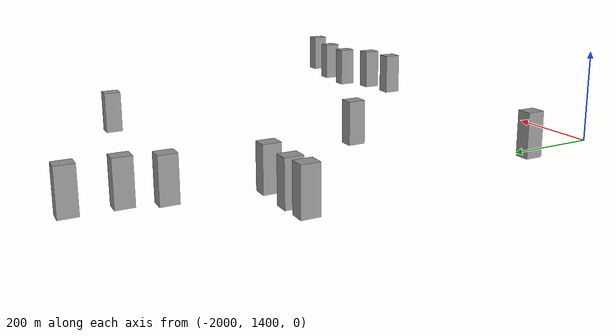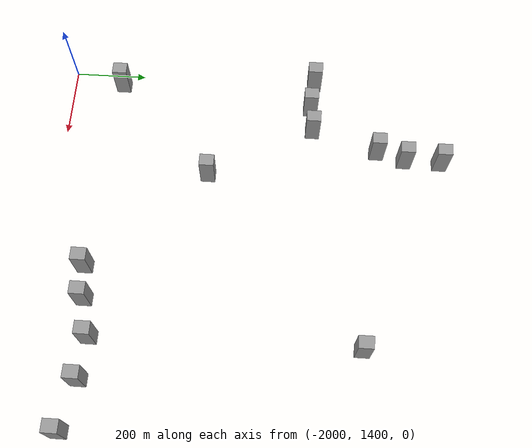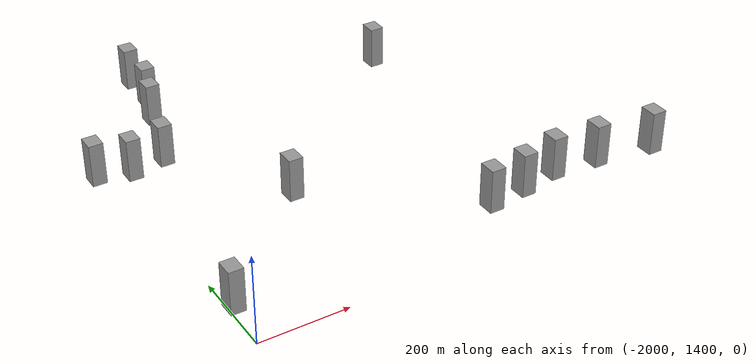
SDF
<sdf version="1.7">
 <world name="default">
  <model name="huge_building_7">
   <link name="link">
    <inertial>
     <mass>137299</mass>
     <inertia>
      <ixx>1.37911e+08</ixx>
      <ixy>0</ixy>
      <ixz>0</ixz>
      <iyy>1.32035e+08</iyy>
      <iyz>0</iyz>
      <izz>3.13216e+07</izz>
     </inertia>
    </inertial>
    <visual name="visual">
     <geometry><box><size>33.3468 40.3177 102.117</size></box></geometry>
     <material>
      <script><name>Gazebo/Grey</name><uri>file://media/materials/scripts/gazebo.material</uri></script>
      <shader type="pixel"/>
     </material>
    </visual>
    <collision name="collision">
     <geometry><box><size>33.3468 40.3177 102.117</size></box></geometry>
     <surface>
      <friction>
       <ode><mu>1</mu><mu2>1</mu2><fdir1>0 0 0</fdir1><slip1>0</slip1><slip2>0</slip2></ode>
       <torsional>
        <coefficient>1</coefficient>
        <patch_radius>0</patch_radius>
        <surface_radius>0</surface_radius>
        <use_patch_radius>1</use_patch_radius>
        <ode><slip>0</slip></ode>
       </torsional>
      </friction>
      <bounce><restitution_coefficient>0</restitution_coefficient><threshold>1e+06</threshold></bounce>
      <contact>
       <collide_without_contact>0</collide_without_contact>
       <collide_without_contact_bitmask>1</collide_without_contact_bitmask>
       <collide_bitmask>1</collide_bitmask>
       <ode>
        <soft_cfm>0</soft_cfm>
        <soft_erp>0.2</soft_erp>
        <kp>1e+13</kp>
        <kd>1</kd>
        <max_vel>0.01</max_vel>
        <min_depth>0</min_depth>
       </ode>
       <bullet>
        <split_impulse>1</split_impulse>
        <split_impulse_penetration_threshold>-0.01</split_impulse_penetration_threshold>
        <soft_cfm>0</soft_cfm>
        <soft_erp>0.2</soft_erp>
        <kp>1e+13</kp>
        <kd>1</kd>
       </bullet>
      </contact>
     </surface>
    </collision>
   </link>
   <static>0</static>
   <pose>-961.829 1519.98 59 0 -0 0</pose>
  </model>
  <model name="huge_building_9">
   <link name="link">
    <inertial>
     <mass>137299</mass>
     <inertia>
      <ixx>1.37911e+08</ixx>
      <ixy>0</ixy>
      <ixz>0</ixz>
      <iyy>1.32035e+08</iyy>
      <iyz>0</iyz>
      <izz>3.13216e+07</izz>
     </inertia>
    </inertial>
    <visual name="visual">
     <geometry><box><size>33.3468 40.3177 102.117</size></box></geometry>
     <material>
      <script><name>Gazebo/Grey</name><uri>file://media/materials/scripts/gazebo.material</uri></script>
      <shader type="pixel"/>
     </material>
    </visual>
    <collision name="collision">
     <geometry><box><size>33.3468 40.3177 102.117</size></box></geometry>
     <surface>
      <friction>
       <ode><mu>1</mu><mu2>1</mu2><fdir1>0 0 0</fdir1><slip1>0</slip1><slip2>0</slip2></ode>
       <torsional>
        <coefficient>1</coefficient>
        <patch_radius>0</patch_radius>
        <surface_radius>0</surface_radius>
        <use_patch_radius>1</use_patch_radius>
        <ode><slip>0</slip></ode>
       </torsional>
      </friction>
      <bounce><restitution_coefficient>0</restitution_coefficient><threshold>1e+06</threshold></bounce>
      <contact>
       <collide_without_contact>0</collide_without_contact>
       <collide_without_contact_bitmask>1</collide_without_contact_bitmask>
       <collide_bitmask>1</collide_bitmask>
       <ode>
        <soft_cfm>0</soft_cfm>
        <soft_erp>0.2</soft_erp>
        <kp>1e+13</kp>
        <kd>1</kd>
        <max_vel>0.01</max_vel>
        <min_depth>0</min_depth>
       </ode>
       <bullet>
        <split_impulse>1</split_impulse>
        <split_impulse_penetration_threshold>-0.01</split_impulse_penetration_threshold>
        <soft_cfm>0</soft_cfm>
        <soft_erp>0.2</soft_erp>
        <kp>1e+13</kp>
        <kd>1</kd>
       </bullet>
      </contact>
     </surface>
    </collision>
   </link>
   <static>0</static>
   <pose>-1864.15 2105.7 9 0 -0 0</pose>
  </model>
  <model name="huge_building_60">
   <link name="link">
    <inertial>
     <mass>137299</mass>
     <inertia>
      <ixx>1.37911e+08</ixx>
      <ixy>0</ixy>
      <ixz>0</ixz>
      <iyy>1.32035e+08</iyy>
      <iyz>0</iyz>
      <izz>3.13216e+07</izz>
     </inertia>
    </inertial>
    <visual name="visual">
     <geometry><box><size>33.3468 40.3177 102.117</size></box></geometry>
     <material>
      <script><name>Gazebo/Grey</name><uri>file://media/materials/scripts/gazebo.material</uri></script>
      <shader type="pixel"/>
     </material>
    </visual>
    <collision name="collision">
     <geometry><box><size>33.3468 40.3177 102.117</size></box></geometry>
     <surface>
      <friction>
       <ode><mu>1</mu><mu2>1</mu2><fdir1>0 0 0</fdir1><slip1>0</slip1><slip2>0</slip2></ode>
       <torsional>
        <coefficient>1</coefficient>
        <patch_radius>0</patch_radius>
        <surface_radius>0</surface_radius>
        <use_patch_radius>1</use_patch_radius>
        <ode><slip>0</slip></ode>
       </torsional>
      </friction>
      <bounce><restitution_coefficient>0</restitution_coefficient><threshold>1e+06</threshold></bounce>
      <contact>
       <collide_without_contact>0</collide_without_contact>
       <collide_without_contact_bitmask>1</collide_without_contact_bitmask>
       <collide_bitmask>1</collide_bitmask>
       <ode>
        <soft_cfm>0</soft_cfm>
        <soft_erp>0.2</soft_erp>
        <kp>1e+13</kp>
        <kd>1</kd>
        <max_vel>0.01</max_vel>
        <min_depth>0</min_depth>
       </ode>
       <bullet>
        <split_impulse>1</split_impulse>
        <split_impulse_penetration_threshold>-0.01</split_impulse_penetration_threshold>
        <soft_cfm>0</soft_cfm>
        <soft_erp>0.2</soft_erp>
        <kp>1e+13</kp>
        <kd>1</kd>
       </bullet>
      </contact>
     </surface>
    </collision>
   </link>
   <static>0</static>
   <pose>-1091.26 1546.53 54 0 -0 0</pose>
  </model>
  <model name="huge_building_61">
   <link name="link">
    <inertial>
     <mass>137299</mass>
     <inertia>
      <ixx>1.37911e+08</ixx>
      <ixy>0</ixy>
      <ixz>0</ixz>
      <iyy>1.32035e+08</iyy>
      <iyz>0</iyz>
      <izz>3.13216e+07</izz>
     </inertia>
    </inertial>
    <visual name="visual">
     <geometry><box><size>33.3468 40.3177 102.117</size></box></geometry>
     <material>
      <script><name>Gazebo/Grey</name><uri>file://media/materials/scripts/gazebo.material</uri></script>
      <shader type="pixel"/>
     </material>
    </visual>
    <collision name="collision">
     <geometry><box><size>33.3468 40.3177 102.117</size></box></geometry>
     <surface>
      <friction>
       <ode><mu>1</mu><mu2>1</mu2><fdir1>0 0 0</fdir1><slip1>0</slip1><slip2>0</slip2></ode>
       <torsional>
        <coefficient>1</coefficient>
        <patch_radius>0</patch_radius>
        <surface_radius>0</surface_radius>
        <use_patch_radius>1</use_patch_radius>
        <ode><slip>0</slip></ode>
       </torsional>
      </friction>
      <bounce><restitution_coefficient>0</restitution_coefficient><threshold>1e+06</threshold></bounce>
      <contact>
       <collide_without_contact>0</collide_without_contact>
       <collide_without_contact_bitmask>1</collide_without_contact_bitmask>
       <collide_bitmask>1</collide_bitmask>
       <ode>
        <soft_cfm>0</soft_cfm>
        <soft_erp>0.2</soft_erp>
        <kp>1e+13</kp>
        <kd>1</kd>
        <max_vel>0.01</max_vel>
        <min_depth>0</min_depth>
       </ode>
       <bullet>
        <split_impulse>1</split_impulse>
        <split_impulse_penetration_threshold>-0.01</split_impulse_penetration_threshold>
        <soft_cfm>0</soft_cfm>
        <soft_erp>0.2</soft_erp>
        <kp>1e+13</kp>
        <kd>1</kd>
       </bullet>
      </contact>
     </surface>
    </collision>
   </link>
   <static>0</static>
   <pose>-1200.47 1555.99 54 0 -0 0</pose>
  </model>
  <model name="huge_building_62">
   <link name="link">
    <inertial>
     <mass>137299</mass>
     <inertia>
      <ixx>1.37911e+08</ixx>
      <ixy>0</ixy>
      <ixz>0</ixz>
      <iyy>1.32035e+08</iyy>
      <iyz>0</iyz>
      <izz>3.13216e+07</izz>
     </inertia>
    </inertial>
    <visual name="visual">
     <geometry><box><size>33.3468 40.3177 102.117</size></box></geometry>
     <material>
      <script><name>Gazebo/Grey</name><uri>file://media/materials/scripts/gazebo.material</uri></script>
      <shader type="pixel"/>
     </material>
    </visual>
    <collision name="collision">
     <geometry><box><size>33.3468 40.3177 102.117</size></box></geometry>
     <surface>
      <friction>
       <ode><mu>1</mu><mu2>1</mu2><fdir1>0 0 0</fdir1><slip1>0</slip1><slip2>0</slip2></ode>
       <torsional>
        <coefficient>1</coefficient>
        <patch_radius>0</patch_radius>
        <surface_radius>0</surface_radius>
        <use_patch_radius>1</use_patch_radius>
        <ode><slip>0</slip></ode>
       </torsional>
      </friction>
      <bounce><restitution_coefficient>0</restitution_coefficient><threshold>1e+06</threshold></bounce>
      <contact>
       <collide_without_contact>0</collide_without_contact>
       <collide_without_contact_bitmask>1</collide_without_contact_bitmask>
       <collide_bitmask>1</collide_bitmask>
       <ode>
        <soft_cfm>0</soft_cfm>
        <soft_erp>0.2</soft_erp>
        <kp>1e+13</kp>
        <kd>1</kd>
        <max_vel>0.01</max_vel>
        <min_depth>0</min_depth>
       </ode>
       <bullet>
        <split_impulse>1</split_impulse>
        <split_impulse_penetration_threshold>-0.01</split_impulse_penetration_threshold>
        <soft_cfm>0</soft_cfm>
        <soft_erp>0.2</soft_erp>
        <kp>1e+13</kp>
        <kd>1</kd>
       </bullet>
      </contact>
     </surface>
    </collision>
   </link>
   <static>0</static>
   <pose>-1298.92 1530.03 61 0 -0 0</pose>
  </model>
  <model name="huge_building_63">
   <link name="link">
    <inertial>
     <mass>137299</mass>
     <inertia>
      <ixx>1.37911e+08</ixx>
      <ixy>0</ixy>
      <ixz>0</ixz>
      <iyy>1.32035e+08</iyy>
      <iyz>0</iyz>
      <izz>3.13216e+07</izz>
     </inertia>
    </inertial>
    <visual name="visual">
     <geometry><box><size>33.3468 40.3177 102.117</size></box></geometry>
     <material>
      <script><name>Gazebo/Grey</name><uri>file://media/materials/scripts/gazebo.material</uri></script>
      <shader type="pixel"/>
     </material>
    </visual>
    <collision name="collision">
     <geometry><box><size>33.3468 40.3177 102.117</size></box></geometry>
     <surface>
      <friction>
       <ode><mu>1</mu><mu2>1</mu2><fdir1>0 0 0</fdir1><slip1>0</slip1><slip2>0</slip2></ode>
       <torsional>
        <coefficient>1</coefficient>
        <patch_radius>0</patch_radius>
        <surface_radius>0</surface_radius>
        <use_patch_radius>1</use_patch_radius>
        <ode><slip>0</slip></ode>
       </torsional>
      </friction>
      <bounce><restitution_coefficient>0</restitution_coefficient><threshold>1e+06</threshold></bounce>
      <contact>
       <collide_without_contact>0</collide_without_contact>
       <collide_without_contact_bitmask>1</collide_without_contact_bitmask>
       <collide_bitmask>1</collide_bitmask>
       <ode>
        <soft_cfm>0</soft_cfm>
        <soft_erp>0.2</soft_erp>
        <kp>1e+13</kp>
        <kd>1</kd>
        <max_vel>0.01</max_vel>
        <min_depth>0</min_depth>
       </ode>
       <bullet>
        <split_impulse>1</split_impulse>
        <split_impulse_penetration_threshold>-0.01</split_impulse_penetration_threshold>
        <soft_cfm>0</soft_cfm>
        <soft_erp>0.2</soft_erp>
        <kp>1e+13</kp>
        <kd>1</kd>
       </bullet>
      </contact>
     </surface>
    </collision>
   </link>
   <static>0</static>
   <pose>-1388.72 1518.67 61 0 -0 0</pose>
  </model>
  <model name="huge_building_70">
   <link name="link">
    <inertial>
     <mass>137299</mass>
     <inertia>
      <ixx>1.37911e+08</ixx>
      <ixy>0</ixy>
      <ixz>0</ixz>
      <iyy>1.32035e+08</iyy>
      <iyz>0</iyz>
      <izz>3.13216e+07</izz>
     </inertia>
    </inertial>
    <visual name="visual">
     <geometry><box><size>33.3468 40.3177 102.117</size></box></geometry>
     <material>
      <script><name>Gazebo/Grey</name><uri>file://media/materials/scripts/gazebo.material</uri></script>
      <shader type="pixel"/>
     </material>
    </visual>
    <collision name="collision">
     <geometry><box><size>33.3468 40.3177 102.117</size></box></geometry>
     <surface>
      <friction>
       <ode><mu>1</mu><mu2>1</mu2><fdir1>0 0 0</fdir1><slip1>0</slip1><slip2>0</slip2></ode>
       <torsional>
        <coefficient>1</coefficient>
        <patch_radius>0</patch_radius>
        <surface_radius>0</surface_radius>
        <use_patch_radius>1</use_patch_radius>
        <ode><slip>0</slip></ode>
       </torsional>
      </friction>
      <bounce><restitution_coefficient>0</restitution_coefficient><threshold>1e+06</threshold></bounce>
      <contact>
       <collide_without_contact>0</collide_without_contact>
       <collide_without_contact_bitmask>1</collide_without_contact_bitmask>
       <collide_bitmask>1</collide_bitmask>
       <ode>
        <soft_cfm>0</soft_cfm>
        <soft_erp>0.2</soft_erp>
        <kp>1e+13</kp>
        <kd>1</kd>
        <max_vel>0.01</max_vel>
        <min_depth>0</min_depth>
       </ode>
       <bullet>
        <split_impulse>1</split_impulse>
        <split_impulse_penetration_threshold>-0.01</split_impulse_penetration_threshold>
        <soft_cfm>0</soft_cfm>
        <soft_erp>0.2</soft_erp>
        <kp>1e+13</kp>
        <kd>1</kd>
       </bullet>
      </contact>
     </surface>
    </collision>
   </link>
   <static>0</static>
   <pose>-1943.47 2097.41 3 0 -0 0</pose>
  </model>
  <model name="huge_building_71">
   <link name="link">
    <inertial>
     <mass>137299</mass>
     <inertia>
      <ixx>1.37911e+08</ixx>
      <ixy>0</ixy>
      <ixz>0</ixz>
      <iyy>1.32035e+08</iyy>
      <iyz>0</iyz>
      <izz>3.13216e+07</izz>
     </inertia>
    </inertial>
    <visual name="visual">
     <geometry><box><size>33.3468 40.3177 102.117</size></box></geometry>
     <material>
      <script><name>Gazebo/Grey</name><uri>file://media/materials/scripts/gazebo.material</uri></script>
      <shader type="pixel"/>
     </material>
    </visual>
    <collision name="collision">
     <geometry><box><size>33.3468 40.3177 102.117</size></box></geometry>
     <surface>
      <friction>
       <ode><mu>1</mu><mu2>1</mu2><fdir1>0 0 0</fdir1><slip1>0</slip1><slip2>0</slip2></ode>
       <torsional>
        <coefficient>1</coefficient>
        <patch_radius>0</patch_radius>
        <surface_radius>0</surface_radius>
        <use_patch_radius>1</use_patch_radius>
        <ode><slip>0</slip></ode>
       </torsional>
      </friction>
      <bounce><restitution_coefficient>0</restitution_coefficient><threshold>1e+06</threshold></bounce>
      <contact>
       <collide_without_contact>0</collide_without_contact>
       <collide_without_contact_bitmask>1</collide_without_contact_bitmask>
       <collide_bitmask>1</collide_bitmask>
       <ode>
        <soft_cfm>0</soft_cfm>
        <soft_erp>0.2</soft_erp>
        <kp>1e+13</kp>
        <kd>1</kd>
        <max_vel>0.01</max_vel>
        <min_depth>0</min_depth>
       </ode>
       <bullet>
        <split_impulse>1</split_impulse>
        <split_impulse_penetration_threshold>-0.01</split_impulse_penetration_threshold>
        <soft_cfm>0</soft_cfm>
        <soft_erp>0.2</soft_erp>
        <kp>1e+13</kp>
        <kd>1</kd>
       </bullet>
      </contact>
     </surface>
    </collision>
   </link>
   <static>0</static>
   <pose>-2024.91 2105.28 14 0 -0 0</pose>
  </model>
  <model name="huge_building_118">
   <link name="link">
    <inertial>
     <mass>137299</mass>
     <inertia>
      <ixx>1.37911e+08</ixx>
      <ixy>0</ixy>
      <ixz>0</ixz>
      <iyy>1.32035e+08</iyy>
      <iyz>0</iyz>
      <izz>3.13216e+07</izz>
     </inertia>
    </inertial>
    <visual name="visual">
     <geometry><box><size>33.3468 40.3177 102.117</size></box></geometry>
     <material>
      <script><name>Gazebo/Grey</name><uri>file://media/materials/scripts/gazebo.material</uri></script>
      <shader type="pixel"/>
     </material>
    </visual>
    <collision name="collision">
     <geometry><box><size>33.3468 40.3177 102.117</size></box></geometry>
     <surface>
      <friction>
       <ode><mu>1</mu><mu2>1</mu2><fdir1>0 0 0</fdir1><slip1>0</slip1><slip2>0</slip2></ode>
       <torsional>
        <coefficient>1</coefficient>
        <patch_radius>0</patch_radius>
        <surface_radius>0</surface_radius>
        <use_patch_radius>1</use_patch_radius>
        <ode><slip>0</slip></ode>
       </torsional>
      </friction>
      <bounce><restitution_coefficient>0</restitution_coefficient><threshold>1e+06</threshold></bounce>
      <contact>
       <collide_without_contact>0</collide_without_contact>
       <collide_without_contact_bitmask>1</collide_without_contact_bitmask>
       <collide_bitmask>1</collide_bitmask>
       <ode>
        <soft_cfm>0</soft_cfm>
        <soft_erp>0.2</soft_erp>
        <kp>1e+13</kp>
        <kd>1</kd>
        <max_vel>0.01</max_vel>
        <min_depth>0</min_depth>
       </ode>
       <bullet>
        <split_impulse>1</split_impulse>
        <split_impulse_penetration_threshold>-0.01</split_impulse_penetration_threshold>
        <soft_cfm>0</soft_cfm>
        <soft_erp>0.2</soft_erp>
        <kp>1e+13</kp>
        <kd>1</kd>
       </bullet>
      </contact>
     </surface>
    </collision>
   </link>
   <static>0</static>
   <pose>-1809.29 2294.12 0 0 -0 0</pose>
  </model>
  <model name="huge_building_119">
   <link name="link">
    <inertial>
     <mass>137299</mass>
     <inertia>
      <ixx>1.37911e+08</ixx>
      <ixy>0</ixy>
      <ixz>0</ixz>
      <iyy>1.32035e+08</iyy>
      <iyz>0</iyz>
      <izz>3.13216e+07</izz>
     </inertia>
    </inertial>
    <visual name="visual">
     <geometry><box><size>33.3468 40.3177 102.117</size></box></geometry>
     <material>
      <script><name>Gazebo/Grey</name><uri>file://media/materials/scripts/gazebo.material</uri></script>
      <shader type="pixel"/>
     </material>
    </visual>
    <collision name="collision">
     <geometry><box><size>33.3468 40.3177 102.117</size></box></geometry>
     <surface>
      <friction>
       <ode><mu>1</mu><mu2>1</mu2><fdir1>0 0 0</fdir1><slip1>0</slip1><slip2>0</slip2></ode>
       <torsional>
        <coefficient>1</coefficient>
        <patch_radius>0</patch_radius>
        <surface_radius>0</surface_radius>
        <use_patch_radius>1</use_patch_radius>
        <ode><slip>0</slip></ode>
       </torsional>
      </friction>
      <bounce><restitution_coefficient>0</restitution_coefficient><threshold>1e+06</threshold></bounce>
      <contact>
       <collide_without_contact>0</collide_without_contact>
       <collide_without_contact_bitmask>1</collide_without_contact_bitmask>
       <collide_bitmask>1</collide_bitmask>
       <ode>
        <soft_cfm>0</soft_cfm>
        <soft_erp>0.2</soft_erp>
        <kp>1e+13</kp>
        <kd>1</kd>
        <max_vel>0.01</max_vel>
        <min_depth>0</min_depth>
       </ode>
       <bullet>
        <split_impulse>1</split_impulse>
        <split_impulse_penetration_threshold>-0.01</split_impulse_penetration_threshold>
        <soft_cfm>0</soft_cfm>
        <soft_erp>0.2</soft_erp>
        <kp>1e+13</kp>
        <kd>1</kd>
       </bullet>
      </contact>
     </surface>
    </collision>
   </link>
   <static>0</static>
   <pose>-1785.85 2373.2 0 0 -0 0</pose>
  </model>
  <model name="huge_building_120">
   <link name="link">
    <inertial>
     <mass>137299</mass>
     <inertia>
      <ixx>1.37911e+08</ixx>
      <ixy>0</ixy>
      <ixz>0</ixz>
      <iyy>1.32035e+08</iyy>
      <iyz>0</iyz>
      <izz>3.13216e+07</izz>
     </inertia>
    </inertial>
    <visual name="visual">
     <geometry><box><size>33.3468 40.3177 102.117</size></box></geometry>
     <material>
      <script><name>Gazebo/Grey</name><uri>file://media/materials/scripts/gazebo.material</uri></script>
      <shader type="pixel"/>
     </material>
    </visual>
    <collision name="collision">
     <geometry><box><size>33.3468 40.3177 102.117</size></box></geometry>
     <surface>
      <friction>
       <ode><mu>1</mu><mu2>1</mu2><fdir1>0 0 0</fdir1><slip1>0</slip1><slip2>0</slip2></ode>
       <torsional>
        <coefficient>1</coefficient>
        <patch_radius>0</patch_radius>
        <surface_radius>0</surface_radius>
        <use_patch_radius>1</use_patch_radius>
        <ode><slip>0</slip></ode>
       </torsional>
      </friction>
      <bounce><restitution_coefficient>0</restitution_coefficient><threshold>1e+06</threshold></bounce>
      <contact>
       <collide_without_contact>0</collide_without_contact>
       <collide_without_contact_bitmask>1</collide_without_contact_bitmask>
       <collide_bitmask>1</collide_bitmask>
       <ode>
        <soft_cfm>0</soft_cfm>
        <soft_erp>0.2</soft_erp>
        <kp>1e+13</kp>
        <kd>1</kd>
        <max_vel>0.01</max_vel>
        <min_depth>0</min_depth>
       </ode>
       <bullet>
        <split_impulse>1</split_impulse>
        <split_impulse_penetration_threshold>-0.01</split_impulse_penetration_threshold>
        <soft_cfm>0</soft_cfm>
        <soft_erp>0.2</soft_erp>
        <kp>1e+13</kp>
        <kd>1</kd>
       </bullet>
      </contact>
     </surface>
    </collision>
   </link>
   <static>0</static>
   <pose>-1784.59 2475.88 0 0 -0 0</pose>
  </model>
  <model name="huge_building_122">
   <link name="link">
    <inertial>
     <mass>137299</mass>
     <inertia>
      <ixx>1.37911e+08</ixx>
      <ixy>0</ixy>
      <ixz>0</ixz>
      <iyy>1.32035e+08</iyy>
      <iyz>0</iyz>
      <izz>3.13216e+07</izz>
     </inertia>
    </inertial>
    <visual name="visual">
     <geometry><box><size>33.3468 40.3177 102.117</size></box></geometry>
     <material>
      <script><name>Gazebo/Grey</name><uri>file://media/materials/scripts/gazebo.material</uri></script>
      <shader type="pixel"/>
     </material>
    </visual>
    <collision name="collision">
     <geometry><box><size>33.3468 40.3177 102.117</size></box></geometry>
     <surface>
      <friction>
       <ode><mu>1</mu><mu2>1</mu2><fdir1>0 0 0</fdir1><slip1>0</slip1><slip2>0</slip2></ode>
       <torsional>
        <coefficient>1</coefficient>
        <patch_radius>0</patch_radius>
        <surface_radius>0</surface_radius>
        <use_patch_radius>1</use_patch_radius>
        <ode><slip>0</slip></ode>
       </torsional>
      </friction>
      <bounce><restitution_coefficient>0</restitution_coefficient><threshold>1e+06</threshold></bounce>
      <contact>
       <collide_without_contact>0</collide_without_contact>
       <collide_without_contact_bitmask>1</collide_without_contact_bitmask>
       <collide_bitmask>1</collide_bitmask>
       <ode>
        <soft_cfm>0</soft_cfm>
        <soft_erp>0.2</soft_erp>
        <kp>1e+13</kp>
        <kd>1</kd>
        <max_vel>0.01</max_vel>
        <min_depth>0</min_depth>
       </ode>
       <bullet>
        <split_impulse>1</split_impulse>
        <split_impulse_penetration_threshold>-0.01</split_impulse_penetration_threshold>
        <soft_cfm>0</soft_cfm>
        <soft_erp>0.2</soft_erp>
        <kp>1e+13</kp>
        <kd>1</kd>
       </bullet>
      </contact>
     </surface>
    </collision>
   </link>
   <static>0</static>
   <pose>-1976.52 1539.69 29 0 -0 0</pose>
  </model>
  <model name="huge_building_163">
   <link name="link">
    <inertial>
     <mass>137299</mass>
     <inertia>
      <ixx>1.37911e+08</ixx>
      <ixy>0</ixy>
      <ixz>0</ixz>
      <iyy>1.32035e+08</iyy>
      <iyz>0</iyz>
      <izz>3.13216e+07</izz>
     </inertia>
    </inertial>
    <visual name="visual">
     <geometry><box><size>33.3468 40.3177 102.117</size></box></geometry>
     <material>
      <script><name>Gazebo/Grey</name><uri>file://media/materials/scripts/gazebo.material</uri></script>
      <shader type="pixel"/>
     </material>
    </visual>
    <collision name="collision">
     <geometry><box><size>33.3468 40.3177 102.117</size></box></geometry>
     <surface>
      <friction>
       <ode><mu>1</mu><mu2>1</mu2><fdir1>0 0 0</fdir1><slip1>0</slip1><slip2>0</slip2></ode>
       <torsional>
        <coefficient>1</coefficient>
        <patch_radius>0</patch_radius>
        <surface_radius>0</surface_radius>
        <use_patch_radius>1</use_patch_radius>
        <ode><slip>0</slip></ode>
       </torsional>
      </friction>
      <bounce><restitution_coefficient>0</restitution_coefficient><threshold>1e+06</threshold></bounce>
      <contact>
       <collide_without_contact>0</collide_without_contact>
       <collide_without_contact_bitmask>1</collide_without_contact_bitmask>
       <collide_bitmask>1</collide_bitmask>
       <ode>
        <soft_cfm>0</soft_cfm>
        <soft_erp>0.2</soft_erp>
        <kp>1e+13</kp>
        <kd>1</kd>
        <max_vel>0.01</max_vel>
        <min_depth>0</min_depth>
       </ode>
       <bullet>
        <split_impulse>1</split_impulse>
        <split_impulse_penetration_threshold>-0.01</split_impulse_penetration_threshold>
        <soft_cfm>0</soft_cfm>
        <soft_erp>0.2</soft_erp>
        <kp>1e+13</kp>
        <kd>1</kd>
       </bullet>
      </contact>
     </surface>
    </collision>
   </link>
   <static>0</static>
   <pose>-1222.01 2259.11 0 0 -0 0</pose>
  </model>
  <model name="huge_building_164">
   <link name="link">
    <inertial>
     <mass>137299</mass>
     <inertia>
      <ixx>1.37911e+08</ixx>
      <ixy>0</ixy>
      <ixz>0</ixz>
      <iyy>1.32035e+08</iyy>
      <iyz>0</iyz>
      <izz>3.13216e+07</izz>
     </inertia>
    </inertial>
    <visual name="visual">
     <geometry><box><size>33.3468 40.3177 102.117</size></box></geometry>
     <material>
      <script><name>Gazebo/Grey</name><uri>file://media/materials/scripts/gazebo.material</uri></script>
      <shader type="pixel"/>
     </material>
    </visual>
    <collision name="collision">
     <geometry><box><size>33.3468 40.3177 102.117</size></box></geometry>
     <surface>
      <friction>
       <ode><mu>1</mu><mu2>1</mu2><fdir1>0 0 0</fdir1><slip1>0</slip1><slip2>0</slip2></ode>
       <torsional>
        <coefficient>1</coefficient>
        <patch_radius>0</patch_radius>
        <surface_radius>0</surface_radius>
        <use_patch_radius>1</use_patch_radius>
        <ode><slip>0</slip></ode>
       </torsional>
      </friction>
      <bounce><restitution_coefficient>0</restitution_coefficient><threshold>1e+06</threshold></bounce>
      <contact>
       <collide_without_contact>0</collide_without_contact>
       <collide_without_contact_bitmask>1</collide_without_contact_bitmask>
       <collide_bitmask>1</collide_bitmask>
       <ode>
        <soft_cfm>0</soft_cfm>
        <soft_erp>0.2</soft_erp>
        <kp>1e+13</kp>
        <kd>1</kd>
        <max_vel>0.01</max_vel>
        <min_depth>0</min_depth>
       </ode>
       <bullet>
        <split_impulse>1</split_impulse>
        <split_impulse_penetration_threshold>-0.01</split_impulse_penetration_threshold>
        <soft_cfm>0</soft_cfm>
        <soft_erp>0.2</soft_erp>
        <kp>1e+13</kp>
        <kd>1</kd>
       </bullet>
      </contact>
     </surface>
    </collision>
   </link>
   <static>0</static>
   <pose>-1695.55 1815.95 26 0 -0 0</pose>
  </model>
 </world>
</sdf>
